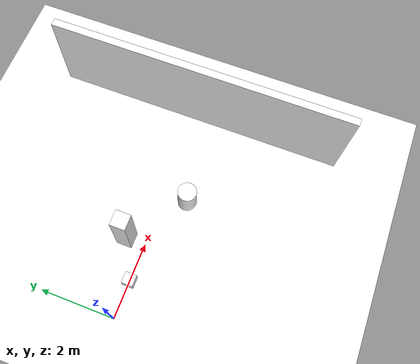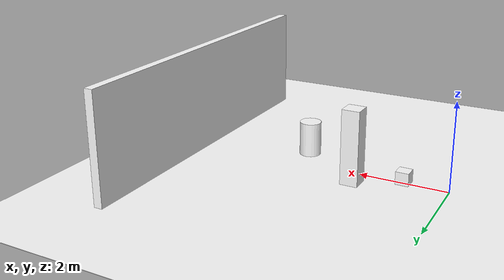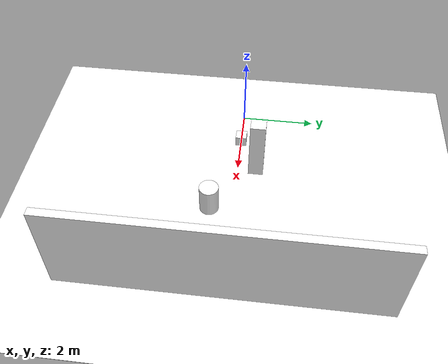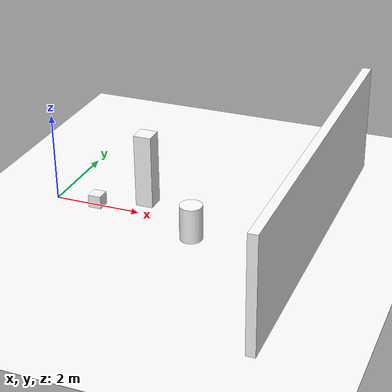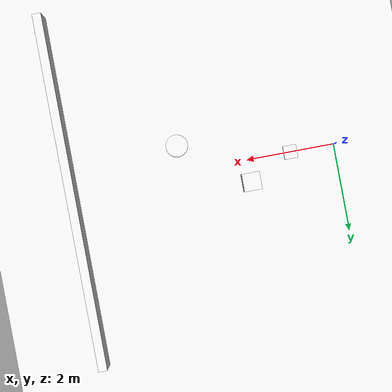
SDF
<?xml version="1.0"?>
<sdf version="1.10">
  <world name="workshop">

    <physics name="1ms" type="ignored">
      <max_step_size>0.001</max_step_size>
      <real_time_factor>1.0</real_time_factor>
    </physics>

    <plugin filename="gz-sim-physics-system"
            name="gz::sim::systems::Physics" />
    <plugin filename="gz-sim-user-commands-system"
            name="gz::sim::systems::UserCommands" />
    <plugin filename="gz-sim-scene-broadcaster-system"
            name="gz::sim::systems::SceneBroadcaster" />
    <plugin filename="gz-sim-contact-system"
            name="gz::sim::systems::Contact" />

    <!-- Without this a camera sensor loads, reports no error, and
         publishes nothing. ogre2 falls back to software rasterisation
         in a container with no GPU: slower, but correct. -->
    <plugin filename="gz-sim-sensors-system"
            name="gz::sim::systems::Sensors">
      <render_engine>ogre2</render_engine>
    </plugin>
    <plugin filename="gz-sim-imu-system"
            name="gz::sim::systems::Imu" />

    <light type="directional" name="sun">
      <cast_shadows>true</cast_shadows>
      <pose>0 0 10 0 0 0</pose>
      <diffuse>0.9 0.9 0.9 1</diffuse>
      <specular>0.1 0.1 0.1 1</specular>
      <direction>-0.4 0.3 -0.9</direction>
    </light>

    <light type="directional" name="fill">
      <cast_shadows>false</cast_shadows>
      <pose>0 0 8 0 0 0</pose>
      <diffuse>0.35 0.35 0.4 1</diffuse>
      <specular>0 0 0 1</specular>
      <direction>0.6 -0.4 -0.7</direction>
    </light>

    <model name="ground_plane">
      <static>true</static>
      <link name="link">
        <collision name="collision">
          <geometry>
            <plane>
              <normal>0 0 1</normal>
              <size>60 60</size>
            </plane>
          </geometry>
          <surface>
            <friction>
              <ode>
                <!-- Paired with the tyres' own mu; Gazebo takes the
                     lower of the two, so a slick floor would cancel
                     the grip set on the wheels. -->
                <mu>1.0</mu>
                <mu2>1.0</mu2>
              </ode>
            </friction>
          </surface>
        </collision>
        <visual name="visual">
          <geometry>
            <box><size>60 60 0.01</size></box>
          </geometry>
          <material>
            <diffuse>1 1 1 1</diffuse>
            <pbr>
              <metal>
                <albedo_map>materials/textures/ground.png</albedo_map>
              </metal>
            </pbr>
          </material>
        </visual>
      </link>
    </model>

    <!-- 1.0 m: a low obstacle, comfortably inside the good range. -->
    <model name="box_1m">
      <static>true</static>
      <pose>1.0 0 0.15 0 0 0</pose>
      <link name="link">
        <collision name="collision">
          <geometry><box><size>0.3 0.3 0.3</size></box></geometry>
        </collision>
        <visual name="visual">
          <geometry><box><size>0.3 0.3 0.3</size></box></geometry>
          <material>
            <diffuse>1 1 1 1</diffuse>
            <pbr>
              <metal>
                <albedo_map>materials/textures/noise.png</albedo_map>
              </metal>
            </pbr>
          </material>
        </visual>
      </link>
    </model>

    <!-- 2.0 m: person-height, offset to one side so it does not hide
         what is behind it. -->
    <model name="box_2m">
      <static>true</static>
      <pose>2.0 0.5 0.85 0 0 0</pose>
      <link name="link">
        <collision name="collision">
          <geometry><box><size>0.4 0.4 1.7</size></box></geometry>
        </collision>
        <visual name="visual">
          <geometry><box><size>0.4 0.4 1.7</size></box></geometry>
          <material>
            <diffuse>1 1 1 1</diffuse>
            <pbr>
              <metal>
                <albedo_map>materials/textures/noise.png</albedo_map>
              </metal>
            </pbr>
          </material>
        </visual>
      </link>
    </model>

    <!-- 3.5 m: a curved surface, where a block matcher has to cope
         with depth changing across the patch. -->
    <model name="cylinder_3m5">
      <static>true</static>
      <pose>3.5 -0.6 0.4 0 0 0</pose>
      <link name="link">
        <collision name="collision">
          <geometry><cylinder><radius>0.25</radius><length>0.8</length></cylinder></geometry>
        </collision>
        <visual name="visual">
          <geometry><cylinder><radius>0.25</radius><length>0.8</length></cylinder></geometry>
          <material>
            <diffuse>1 1 1 1</diffuse>
            <pbr>
              <metal>
                <albedo_map>materials/textures/noise.png</albedo_map>
              </metal>
            </pbr>
          </material>
        </visual>
      </link>
    </model>

    <!-- 6.0 m: past useful precision, but it fills the frame so the
         upper half of the image is not empty sky. -->
    <model name="back_wall">
      <static>true</static>
      <pose>6.0 0 1.25 0 0 0</pose>
      <link name="link">
        <collision name="collision">
          <geometry><box><size>0.2 8.0 2.5</size></box></geometry>
        </collision>
        <visual name="visual">
          <geometry><box><size>0.2 8.0 2.5</size></box></geometry>
          <material>
            <diffuse>1 1 1 1</diffuse>
            <pbr>
              <metal>
                <albedo_map>materials/textures/noise.png</albedo_map>
              </metal>
            </pbr>
          </material>
        </visual>
      </link>
    </model>

  </world>
</sdf>
